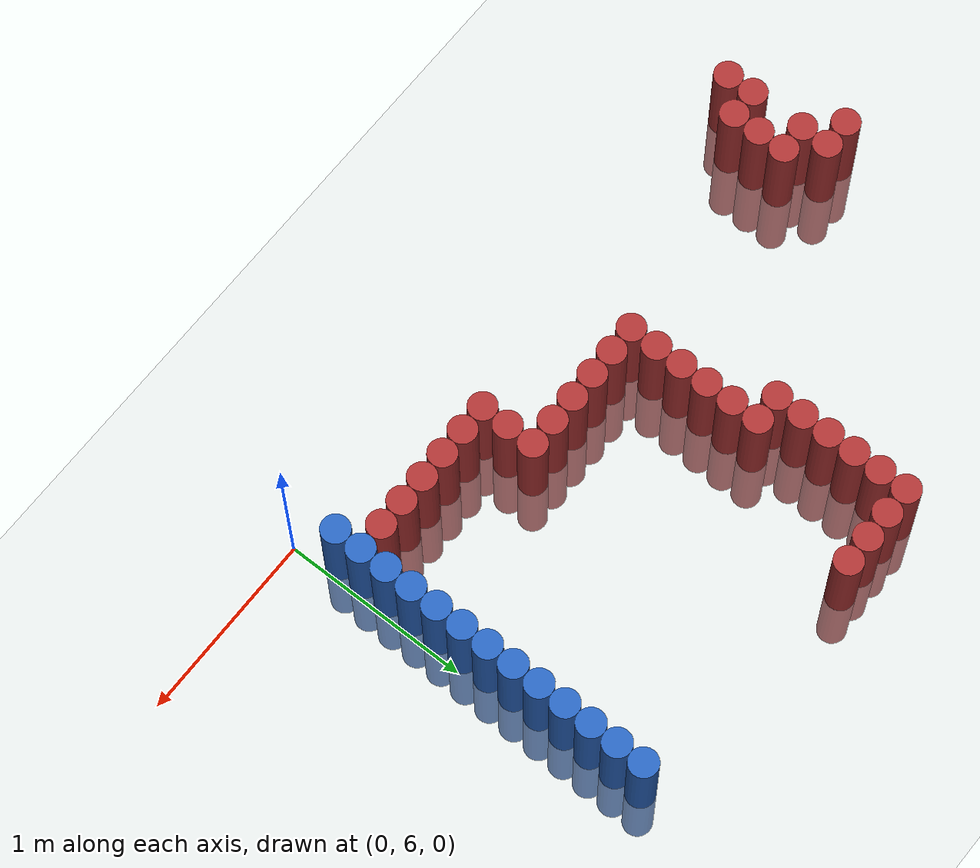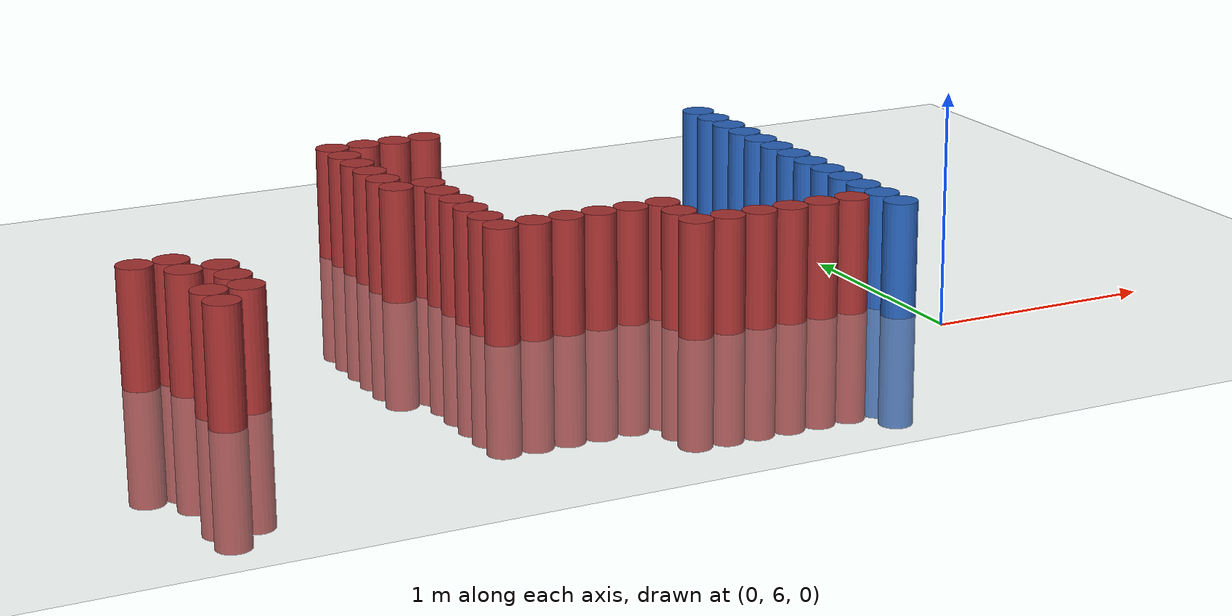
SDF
<sdf version="1.6">
 <world name="default">
  <model name="ground_plane">
   <static>1</static>
   <link name="link">
    <collision name="collision">
     <geometry><plane><normal>0 0 1</normal><size>100 100</size></plane></geometry>
     <surface><friction><ode><mu>100</mu><mu2>50</mu2></ode></friction></surface>
    </collision>
    <visual name="visual">
     <cast_shadows>0</cast_shadows>
     <geometry><plane><normal>0 0 1</normal><size>100 100</size></plane></geometry>
     <material>
      <script><uri>file://media/materials/scripts/gazebo.material</uri><name>Gazebo/Grey</name></script>
     </material>
    </visual>
   </link>
  </model>
  <model name="unit_cylinder_162">
   <static>1</static>
   <pose>-3.225000 6.825000 0.000000 0.000000 0.000000 0.000000</pose>
   <link name="link">
    <inertial>
     <mass>1</mass>
     <inertia><ixx>0.145833</ixx><ixy>0</ixy><ixz>0</ixz><iyy>0.145833</iyy><iyz>0</iyz><izz>0.125</izz></inertia>
    </inertial>
    <collision name="collision">
     <geometry><cylinder><radius>0.075000</radius><length>1</length></cylinder></geometry>
    </collision>
    <visual name="visual">
     <geometry><cylinder><radius>0.075000</radius><length>1</length></cylinder></geometry>
     <material>
      <ambient>0.648000 0.192000 0.192000 1</ambient>
      <diffuse>0.648000 0.192000 0.192000 1</diffuse>
     </material>
     <material>
      <script><name>Gazebo/Grey</name><uri>file://media/materials/scripts/gazebo.material</uri></script>
     </material>
    </visual>
   </link>
  </model>
  <model name="unit_cylinder_171">
   <static>1</static>
   <pose>-3.075000 6.225000 0.000000 0.000000 0.000000 0.000000</pose>
   <link name="link">
    <inertial>
     <mass>1</mass>
     <inertia><ixx>0.145833</ixx><ixy>0</ixy><ixz>0</ixz><iyy>0.145833</iyy><iyz>0</iyz><izz>0.125</izz></inertia>
    </inertial>
    <collision name="collision">
     <geometry><cylinder><radius>0.075000</radius><length>1</length></cylinder></geometry>
    </collision>
    <visual name="visual">
     <geometry><cylinder><radius>0.075000</radius><length>1</length></cylinder></geometry>
     <material>
      <ambient>0.648000 0.192000 0.192000 1</ambient>
      <diffuse>0.648000 0.192000 0.192000 1</diffuse>
     </material>
     <material>
      <script><name>Gazebo/Grey</name><uri>file://media/materials/scripts/gazebo.material</uri></script>
     </material>
    </visual>
   </link>
  </model>
  <model name="unit_cylinder_172">
   <static>1</static>
   <pose>-3.075000 6.375000 0.000000 0.000000 0.000000 0.000000</pose>
   <link name="link">
    <inertial>
     <mass>1</mass>
     <inertia><ixx>0.145833</ixx><ixy>0</ixy><ixz>0</ixz><iyy>0.145833</iyy><iyz>0</iyz><izz>0.125</izz></inertia>
    </inertial>
    <collision name="collision">
     <geometry><cylinder><radius>0.075000</radius><length>1</length></cylinder></geometry>
    </collision>
    <visual name="visual">
     <geometry><cylinder><radius>0.075000</radius><length>1</length></cylinder></geometry>
     <material>
      <ambient>0.648000 0.192000 0.192000 1</ambient>
      <diffuse>0.648000 0.192000 0.192000 1</diffuse>
     </material>
     <material>
      <script><name>Gazebo/Grey</name><uri>file://media/materials/scripts/gazebo.material</uri></script>
     </material>
    </visual>
   </link>
  </model>
  <model name="unit_cylinder_173">
   <static>1</static>
   <pose>-3.075000 6.675000 0.000000 0.000000 0.000000 0.000000</pose>
   <link name="link">
    <inertial>
     <mass>1</mass>
     <inertia><ixx>0.145833</ixx><ixy>0</ixy><ixz>0</ixz><iyy>0.145833</iyy><iyz>0</iyz><izz>0.125</izz></inertia>
    </inertial>
    <collision name="collision">
     <geometry><cylinder><radius>0.075000</radius><length>1</length></cylinder></geometry>
    </collision>
    <visual name="visual">
     <geometry><cylinder><radius>0.075000</radius><length>1</length></cylinder></geometry>
     <material>
      <ambient>0.648000 0.192000 0.192000 1</ambient>
      <diffuse>0.648000 0.192000 0.192000 1</diffuse>
     </material>
     <material>
      <script><name>Gazebo/Grey</name><uri>file://media/materials/scripts/gazebo.material</uri></script>
     </material>
    </visual>
   </link>
  </model>
  <model name="unit_cylinder_174">
   <static>1</static>
   <pose>-3.075000 6.825000 0.000000 0.000000 0.000000 0.000000</pose>
   <link name="link">
    <inertial>
     <mass>1</mass>
     <inertia><ixx>0.145833</ixx><ixy>0</ixy><ixz>0</ixz><iyy>0.145833</iyy><iyz>0</iyz><izz>0.125</izz></inertia>
    </inertial>
    <collision name="collision">
     <geometry><cylinder><radius>0.075000</radius><length>1</length></cylinder></geometry>
    </collision>
    <visual name="visual">
     <geometry><cylinder><radius>0.075000</radius><length>1</length></cylinder></geometry>
     <material>
      <ambient>0.648000 0.192000 0.192000 1</ambient>
      <diffuse>0.648000 0.192000 0.192000 1</diffuse>
     </material>
     <material>
      <script><name>Gazebo/Grey</name><uri>file://media/materials/scripts/gazebo.material</uri></script>
     </material>
    </visual>
   </link>
  </model>
  <model name="unit_cylinder_177">
   <static>1</static>
   <pose>-2.925000 6.375000 0.000000 0.000000 0.000000 0.000000</pose>
   <link name="link">
    <inertial>
     <mass>1</mass>
     <inertia><ixx>0.145833</ixx><ixy>0</ixy><ixz>0</ixz><iyy>0.145833</iyy><iyz>0</iyz><izz>0.125</izz></inertia>
    </inertial>
    <collision name="collision">
     <geometry><cylinder><radius>0.075000</radius><length>1</length></cylinder></geometry>
    </collision>
    <visual name="visual">
     <geometry><cylinder><radius>0.075000</radius><length>1</length></cylinder></geometry>
     <material>
      <ambient>0.648000 0.192000 0.192000 1</ambient>
      <diffuse>0.648000 0.192000 0.192000 1</diffuse>
     </material>
     <material>
      <script><name>Gazebo/Grey</name><uri>file://media/materials/scripts/gazebo.material</uri></script>
     </material>
    </visual>
   </link>
  </model>
  <model name="unit_cylinder_178">
   <static>1</static>
   <pose>-2.925000 6.525000 0.000000 0.000000 0.000000 0.000000</pose>
   <link name="link">
    <inertial>
     <mass>1</mass>
     <inertia><ixx>0.145833</ixx><ixy>0</ixy><ixz>0</ixz><iyy>0.145833</iyy><iyz>0</iyz><izz>0.125</izz></inertia>
    </inertial>
    <collision name="collision">
     <geometry><cylinder><radius>0.075000</radius><length>1</length></cylinder></geometry>
    </collision>
    <visual name="visual">
     <geometry><cylinder><radius>0.075000</radius><length>1</length></cylinder></geometry>
     <material>
      <ambient>0.648000 0.192000 0.192000 1</ambient>
      <diffuse>0.648000 0.192000 0.192000 1</diffuse>
     </material>
     <material>
      <script><name>Gazebo/Grey</name><uri>file://media/materials/scripts/gazebo.material</uri></script>
     </material>
    </visual>
   </link>
  </model>
  <model name="unit_cylinder_179">
   <static>1</static>
   <pose>-2.925000 6.675000 0.000000 0.000000 0.000000 0.000000</pose>
   <link name="link">
    <inertial>
     <mass>1</mass>
     <inertia><ixx>0.145833</ixx><ixy>0</ixy><ixz>0</ixz><iyy>0.145833</iyy><iyz>0</iyz><izz>0.125</izz></inertia>
    </inertial>
    <collision name="collision">
     <geometry><cylinder><radius>0.075000</radius><length>1</length></cylinder></geometry>
    </collision>
    <visual name="visual">
     <geometry><cylinder><radius>0.075000</radius><length>1</length></cylinder></geometry>
     <material>
      <ambient>0.648000 0.192000 0.192000 1</ambient>
      <diffuse>0.648000 0.192000 0.192000 1</diffuse>
     </material>
     <material>
      <script><name>Gazebo/Grey</name><uri>file://media/materials/scripts/gazebo.material</uri></script>
     </material>
    </visual>
   </link>
  </model>
  <model name="unit_cylinder_184">
   <static>1</static>
   <pose>-1.875000 7.425000 0.000000 0.000000 0.000000 0.000000</pose>
   <link name="link">
    <inertial>
     <mass>1</mass>
     <inertia><ixx>0.145833</ixx><ixy>0</ixy><ixz>0</ixz><iyy>0.145833</iyy><iyz>0</iyz><izz>0.125</izz></inertia>
    </inertial>
    <collision name="collision">
     <geometry><cylinder><radius>0.075000</radius><length>1</length></cylinder></geometry>
    </collision>
    <visual name="visual">
     <geometry><cylinder><radius>0.075000</radius><length>1</length></cylinder></geometry>
     <material>
      <ambient>0.648000 0.192000 0.192000 1</ambient>
      <diffuse>0.648000 0.192000 0.192000 1</diffuse>
     </material>
     <material>
      <script><name>Gazebo/Grey</name><uri>file://media/materials/scripts/gazebo.material</uri></script>
     </material>
    </visual>
   </link>
  </model>
  <model name="unit_cylinder_185">
   <static>1</static>
   <pose>-1.875000 7.575000 0.000000 0.000000 0.000000 0.000000</pose>
   <link name="link">
    <inertial>
     <mass>1</mass>
     <inertia><ixx>0.145833</ixx><ixy>0</ixy><ixz>0</ixz><iyy>0.145833</iyy><iyz>0</iyz><izz>0.125</izz></inertia>
    </inertial>
    <collision name="collision">
     <geometry><cylinder><radius>0.075000</radius><length>1</length></cylinder></geometry>
    </collision>
    <visual name="visual">
     <geometry><cylinder><radius>0.075000</radius><length>1</length></cylinder></geometry>
     <material>
      <ambient>0.648000 0.192000 0.192000 1</ambient>
      <diffuse>0.648000 0.192000 0.192000 1</diffuse>
     </material>
     <material>
      <script><name>Gazebo/Grey</name><uri>file://media/materials/scripts/gazebo.material</uri></script>
     </material>
    </visual>
   </link>
  </model>
  <model name="unit_cylinder_186">
   <static>1</static>
   <pose>-1.875000 7.725000 0.000000 0.000000 0.000000 0.000000</pose>
   <link name="link">
    <inertial>
     <mass>1</mass>
     <inertia><ixx>0.145833</ixx><ixy>0</ixy><ixz>0</ixz><iyy>0.145833</iyy><iyz>0</iyz><izz>0.125</izz></inertia>
    </inertial>
    <collision name="collision">
     <geometry><cylinder><radius>0.075000</radius><length>1</length></cylinder></geometry>
    </collision>
    <visual name="visual">
     <geometry><cylinder><radius>0.075000</radius><length>1</length></cylinder></geometry>
     <material>
      <ambient>0.648000 0.192000 0.192000 1</ambient>
      <diffuse>0.648000 0.192000 0.192000 1</diffuse>
     </material>
     <material>
      <script><name>Gazebo/Grey</name><uri>file://media/materials/scripts/gazebo.material</uri></script>
     </material>
    </visual>
   </link>
  </model>
  <model name="unit_cylinder_187">
   <static>1</static>
   <pose>-1.875000 7.875000 0.000000 0.000000 0.000000 0.000000</pose>
   <link name="link">
    <inertial>
     <mass>1</mass>
     <inertia><ixx>0.145833</ixx><ixy>0</ixy><ixz>0</ixz><iyy>0.145833</iyy><iyz>0</iyz><izz>0.125</izz></inertia>
    </inertial>
    <collision name="collision">
     <geometry><cylinder><radius>0.075000</radius><length>1</length></cylinder></geometry>
    </collision>
    <visual name="visual">
     <geometry><cylinder><radius>0.075000</radius><length>1</length></cylinder></geometry>
     <material>
      <ambient>0.648000 0.192000 0.192000 1</ambient>
      <diffuse>0.648000 0.192000 0.192000 1</diffuse>
     </material>
     <material>
      <script><name>Gazebo/Grey</name><uri>file://media/materials/scripts/gazebo.material</uri></script>
     </material>
    </visual>
   </link>
  </model>
  <model name="unit_cylinder_188">
   <static>1</static>
   <pose>-1.875000 8.025000 0.000000 0.000000 0.000000 0.000000</pose>
   <link name="link">
    <inertial>
     <mass>1</mass>
     <inertia><ixx>0.145833</ixx><ixy>0</ixy><ixz>0</ixz><iyy>0.145833</iyy><iyz>0</iyz><izz>0.125</izz></inertia>
    </inertial>
    <collision name="collision">
     <geometry><cylinder><radius>0.075000</radius><length>1</length></cylinder></geometry>
    </collision>
    <visual name="visual">
     <geometry><cylinder><radius>0.075000</radius><length>1</length></cylinder></geometry>
     <material>
      <ambient>0.648000 0.192000 0.192000 1</ambient>
      <diffuse>0.648000 0.192000 0.192000 1</diffuse>
     </material>
     <material>
      <script><name>Gazebo/Grey</name><uri>file://media/materials/scripts/gazebo.material</uri></script>
     </material>
    </visual>
   </link>
  </model>
  <model name="unit_cylinder_189">
   <static>1</static>
   <pose>-1.875000 8.175000 0.000000 0.000000 0.000000 0.000000</pose>
   <link name="link">
    <inertial>
     <mass>1</mass>
     <inertia><ixx>0.145833</ixx><ixy>0</ixy><ixz>0</ixz><iyy>0.145833</iyy><iyz>0</iyz><izz>0.125</izz></inertia>
    </inertial>
    <collision name="collision">
     <geometry><cylinder><radius>0.075000</radius><length>1</length></cylinder></geometry>
    </collision>
    <visual name="visual">
     <geometry><cylinder><radius>0.075000</radius><length>1</length></cylinder></geometry>
     <material>
      <ambient>0.648000 0.192000 0.192000 1</ambient>
      <diffuse>0.648000 0.192000 0.192000 1</diffuse>
     </material>
     <material>
      <script><name>Gazebo/Grey</name><uri>file://media/materials/scripts/gazebo.material</uri></script>
     </material>
    </visual>
   </link>
  </model>
  <model name="unit_cylinder_190">
   <static>1</static>
   <pose>-1.725000 6.675000 0.000000 0.000000 0.000000 0.000000</pose>
   <link name="link">
    <inertial>
     <mass>1</mass>
     <inertia><ixx>0.145833</ixx><ixy>0</ixy><ixz>0</ixz><iyy>0.145833</iyy><iyz>0</iyz><izz>0.125</izz></inertia>
    </inertial>
    <collision name="collision">
     <geometry><cylinder><radius>0.075000</radius><length>1</length></cylinder></geometry>
    </collision>
    <visual name="visual">
     <geometry><cylinder><radius>0.075000</radius><length>1</length></cylinder></geometry>
     <material>
      <ambient>0.648000 0.192000 0.192000 1</ambient>
      <diffuse>0.648000 0.192000 0.192000 1</diffuse>
     </material>
     <material>
      <script><name>Gazebo/Grey</name><uri>file://media/materials/scripts/gazebo.material</uri></script>
     </material>
    </visual>
   </link>
  </model>
  <model name="unit_cylinder_191">
   <static>1</static>
   <pose>-1.725000 6.825000 0.000000 0.000000 0.000000 0.000000</pose>
   <link name="link">
    <inertial>
     <mass>1</mass>
     <inertia><ixx>0.145833</ixx><ixy>0</ixy><ixz>0</ixz><iyy>0.145833</iyy><iyz>0</iyz><izz>0.125</izz></inertia>
    </inertial>
    <collision name="collision">
     <geometry><cylinder><radius>0.075000</radius><length>1</length></cylinder></geometry>
    </collision>
    <visual name="visual">
     <geometry><cylinder><radius>0.075000</radius><length>1</length></cylinder></geometry>
     <material>
      <ambient>0.648000 0.192000 0.192000 1</ambient>
      <diffuse>0.648000 0.192000 0.192000 1</diffuse>
     </material>
     <material>
      <script><name>Gazebo/Grey</name><uri>file://media/materials/scripts/gazebo.material</uri></script>
     </material>
    </visual>
   </link>
  </model>
  <model name="unit_cylinder_192">
   <static>1</static>
   <pose>-1.725000 6.975000 0.000000 0.000000 0.000000 0.000000</pose>
   <link name="link">
    <inertial>
     <mass>1</mass>
     <inertia><ixx>0.145833</ixx><ixy>0</ixy><ixz>0</ixz><iyy>0.145833</iyy><iyz>0</iyz><izz>0.125</izz></inertia>
    </inertial>
    <collision name="collision">
     <geometry><cylinder><radius>0.075000</radius><length>1</length></cylinder></geometry>
    </collision>
    <visual name="visual">
     <geometry><cylinder><radius>0.075000</radius><length>1</length></cylinder></geometry>
     <material>
      <ambient>0.648000 0.192000 0.192000 1</ambient>
      <diffuse>0.648000 0.192000 0.192000 1</diffuse>
     </material>
     <material>
      <script><name>Gazebo/Grey</name><uri>file://media/materials/scripts/gazebo.material</uri></script>
     </material>
    </visual>
   </link>
  </model>
  <model name="unit_cylinder_193">
   <static>1</static>
   <pose>-1.725000 7.125000 0.000000 0.000000 0.000000 0.000000</pose>
   <link name="link">
    <inertial>
     <mass>1</mass>
     <inertia><ixx>0.145833</ixx><ixy>0</ixy><ixz>0</ixz><iyy>0.145833</iyy><iyz>0</iyz><izz>0.125</izz></inertia>
    </inertial>
    <collision name="collision">
     <geometry><cylinder><radius>0.075000</radius><length>1</length></cylinder></geometry>
    </collision>
    <visual name="visual">
     <geometry><cylinder><radius>0.075000</radius><length>1</length></cylinder></geometry>
     <material>
      <ambient>0.648000 0.192000 0.192000 1</ambient>
      <diffuse>0.648000 0.192000 0.192000 1</diffuse>
     </material>
     <material>
      <script><name>Gazebo/Grey</name><uri>file://media/materials/scripts/gazebo.material</uri></script>
     </material>
    </visual>
   </link>
  </model>
  <model name="unit_cylinder_194">
   <static>1</static>
   <pose>-1.725000 7.275000 0.000000 0.000000 0.000000 0.000000</pose>
   <link name="link">
    <inertial>
     <mass>1</mass>
     <inertia><ixx>0.145833</ixx><ixy>0</ixy><ixz>0</ixz><iyy>0.145833</iyy><iyz>0</iyz><izz>0.125</izz></inertia>
    </inertial>
    <collision name="collision">
     <geometry><cylinder><radius>0.075000</radius><length>1</length></cylinder></geometry>
    </collision>
    <visual name="visual">
     <geometry><cylinder><radius>0.075000</radius><length>1</length></cylinder></geometry>
     <material>
      <ambient>0.648000 0.192000 0.192000 1</ambient>
      <diffuse>0.648000 0.192000 0.192000 1</diffuse>
     </material>
     <material>
      <script><name>Gazebo/Grey</name><uri>file://media/materials/scripts/gazebo.material</uri></script>
     </material>
    </visual>
   </link>
  </model>
  <model name="unit_cylinder_195">
   <static>1</static>
   <pose>-1.725000 7.425000 0.000000 0.000000 0.000000 0.000000</pose>
   <link name="link">
    <inertial>
     <mass>1</mass>
     <inertia><ixx>0.145833</ixx><ixy>0</ixy><ixz>0</ixz><iyy>0.145833</iyy><iyz>0</iyz><izz>0.125</izz></inertia>
    </inertial>
    <collision name="collision">
     <geometry><cylinder><radius>0.075000</radius><length>1</length></cylinder></geometry>
    </collision>
    <visual name="visual">
     <geometry><cylinder><radius>0.075000</radius><length>1</length></cylinder></geometry>
     <material>
      <ambient>0.648000 0.192000 0.192000 1</ambient>
      <diffuse>0.648000 0.192000 0.192000 1</diffuse>
     </material>
     <material>
      <script><name>Gazebo/Grey</name><uri>file://media/materials/scripts/gazebo.material</uri></script>
     </material>
    </visual>
   </link>
  </model>
  <model name="unit_cylinder_196">
   <static>1</static>
   <pose>-1.725000 8.175000 0.000000 0.000000 0.000000 0.000000</pose>
   <link name="link">
    <inertial>
     <mass>1</mass>
     <inertia><ixx>0.145833</ixx><ixy>0</ixy><ixz>0</ixz><iyy>0.145833</iyy><iyz>0</iyz><izz>0.125</izz></inertia>
    </inertial>
    <collision name="collision">
     <geometry><cylinder><radius>0.075000</radius><length>1</length></cylinder></geometry>
    </collision>
    <visual name="visual">
     <geometry><cylinder><radius>0.075000</radius><length>1</length></cylinder></geometry>
     <material>
      <ambient>0.648000 0.192000 0.192000 1</ambient>
      <diffuse>0.648000 0.192000 0.192000 1</diffuse>
     </material>
     <material>
      <script><name>Gazebo/Grey</name><uri>file://media/materials/scripts/gazebo.material</uri></script>
     </material>
    </visual>
   </link>
  </model>
  <model name="unit_cylinder_202">
   <static>1</static>
   <pose>-1.575000 6.675000 0.000000 0.000000 0.000000 0.000000</pose>
   <link name="link">
    <inertial>
     <mass>1</mass>
     <inertia><ixx>0.145833</ixx><ixy>0</ixy><ixz>0</ixz><iyy>0.145833</iyy><iyz>0</iyz><izz>0.125</izz></inertia>
    </inertial>
    <collision name="collision">
     <geometry><cylinder><radius>0.075000</radius><length>1</length></cylinder></geometry>
    </collision>
    <visual name="visual">
     <geometry><cylinder><radius>0.075000</radius><length>1</length></cylinder></geometry>
     <material>
      <ambient>0.648000 0.192000 0.192000 1</ambient>
      <diffuse>0.648000 0.192000 0.192000 1</diffuse>
     </material>
     <material>
      <script><name>Gazebo/Grey</name><uri>file://media/materials/scripts/gazebo.material</uri></script>
     </material>
    </visual>
   </link>
  </model>
  <model name="unit_cylinder_203">
   <static>1</static>
   <pose>-1.575000 8.175000 0.000000 0.000000 0.000000 0.000000</pose>
   <link name="link">
    <inertial>
     <mass>1</mass>
     <inertia><ixx>0.145833</ixx><ixy>0</ixy><ixz>0</ixz><iyy>0.145833</iyy><iyz>0</iyz><izz>0.125</izz></inertia>
    </inertial>
    <collision name="collision">
     <geometry><cylinder><radius>0.075000</radius><length>1</length></cylinder></geometry>
    </collision>
    <visual name="visual">
     <geometry><cylinder><radius>0.075000</radius><length>1</length></cylinder></geometry>
     <material>
      <ambient>0.648000 0.192000 0.192000 1</ambient>
      <diffuse>0.648000 0.192000 0.192000 1</diffuse>
     </material>
     <material>
      <script><name>Gazebo/Grey</name><uri>file://media/materials/scripts/gazebo.material</uri></script>
     </material>
    </visual>
   </link>
  </model>
  <model name="unit_cylinder_206">
   <static>1</static>
   <pose>-1.425000 6.675000 0.000000 0.000000 0.000000 0.000000</pose>
   <link name="link">
    <inertial>
     <mass>1</mass>
     <inertia><ixx>0.145833</ixx><ixy>0</ixy><ixz>0</ixz><iyy>0.145833</iyy><iyz>0</iyz><izz>0.125</izz></inertia>
    </inertial>
    <collision name="collision">
     <geometry><cylinder><radius>0.075000</radius><length>1</length></cylinder></geometry>
    </collision>
    <visual name="visual">
     <geometry><cylinder><radius>0.075000</radius><length>1</length></cylinder></geometry>
     <material>
      <ambient>0.648000 0.192000 0.192000 1</ambient>
      <diffuse>0.648000 0.192000 0.192000 1</diffuse>
     </material>
     <material>
      <script><name>Gazebo/Grey</name><uri>file://media/materials/scripts/gazebo.material</uri></script>
     </material>
    </visual>
   </link>
  </model>
  <model name="unit_cylinder_207">
   <static>1</static>
   <pose>-1.425000 8.175000 0.000000 0.000000 0.000000 0.000000</pose>
   <link name="link">
    <inertial>
     <mass>1</mass>
     <inertia><ixx>0.145833</ixx><ixy>0</ixy><ixz>0</ixz><iyy>0.145833</iyy><iyz>0</iyz><izz>0.125</izz></inertia>
    </inertial>
    <collision name="collision">
     <geometry><cylinder><radius>0.075000</radius><length>1</length></cylinder></geometry>
    </collision>
    <visual name="visual">
     <geometry><cylinder><radius>0.075000</radius><length>1</length></cylinder></geometry>
     <material>
      <ambient>0.648000 0.192000 0.192000 1</ambient>
      <diffuse>0.648000 0.192000 0.192000 1</diffuse>
     </material>
     <material>
      <script><name>Gazebo/Grey</name><uri>file://media/materials/scripts/gazebo.material</uri></script>
     </material>
    </visual>
   </link>
  </model>
  <model name="unit_cylinder_211">
   <static>1</static>
   <pose>-1.275000 6.675000 0.000000 0.000000 0.000000 0.000000</pose>
   <link name="link">
    <inertial>
     <mass>1</mass>
     <inertia><ixx>0.145833</ixx><ixy>0</ixy><ixz>0</ixz><iyy>0.145833</iyy><iyz>0</iyz><izz>0.125</izz></inertia>
    </inertial>
    <collision name="collision">
     <geometry><cylinder><radius>0.075000</radius><length>1</length></cylinder></geometry>
    </collision>
    <visual name="visual">
     <geometry><cylinder><radius>0.075000</radius><length>1</length></cylinder></geometry>
     <material>
      <ambient>0.648000 0.192000 0.192000 1</ambient>
      <diffuse>0.648000 0.192000 0.192000 1</diffuse>
     </material>
     <material>
      <script><name>Gazebo/Grey</name><uri>file://media/materials/scripts/gazebo.material</uri></script>
     </material>
    </visual>
   </link>
  </model>
  <model name="unit_cylinder_215">
   <static>1</static>
   <pose>-1.125000 6.675000 0.000000 0.000000 0.000000 0.000000</pose>
   <link name="link">
    <inertial>
     <mass>1</mass>
     <inertia><ixx>0.145833</ixx><ixy>0</ixy><ixz>0</ixz><iyy>0.145833</iyy><iyz>0</iyz><izz>0.125</izz></inertia>
    </inertial>
    <collision name="collision">
     <geometry><cylinder><radius>0.075000</radius><length>1</length></cylinder></geometry>
    </collision>
    <visual name="visual">
     <geometry><cylinder><radius>0.075000</radius><length>1</length></cylinder></geometry>
     <material>
      <ambient>0.648000 0.192000 0.192000 1</ambient>
      <diffuse>0.648000 0.192000 0.192000 1</diffuse>
     </material>
     <material>
      <script><name>Gazebo/Grey</name><uri>file://media/materials/scripts/gazebo.material</uri></script>
     </material>
    </visual>
   </link>
  </model>
  <model name="unit_cylinder_225">
   <static>1</static>
   <pose>-0.975000 6.375000 0.000000 0.000000 0.000000 0.000000</pose>
   <link name="link">
    <inertial>
     <mass>1</mass>
     <inertia><ixx>0.145833</ixx><ixy>0</ixy><ixz>0</ixz><iyy>0.145833</iyy><iyz>0</iyz><izz>0.125</izz></inertia>
    </inertial>
    <collision name="collision">
     <geometry><cylinder><radius>0.075000</radius><length>1</length></cylinder></geometry>
    </collision>
    <visual name="visual">
     <geometry><cylinder><radius>0.075000</radius><length>1</length></cylinder></geometry>
     <material>
      <ambient>0.648000 0.192000 0.192000 1</ambient>
      <diffuse>0.648000 0.192000 0.192000 1</diffuse>
     </material>
     <material>
      <script><name>Gazebo/Grey</name><uri>file://media/materials/scripts/gazebo.material</uri></script>
     </material>
    </visual>
   </link>
  </model>
  <model name="unit_cylinder_226">
   <static>1</static>
   <pose>-0.975000 6.525000 0.000000 0.000000 0.000000 0.000000</pose>
   <link name="link">
    <inertial>
     <mass>1</mass>
     <inertia><ixx>0.145833</ixx><ixy>0</ixy><ixz>0</ixz><iyy>0.145833</iyy><iyz>0</iyz><izz>0.125</izz></inertia>
    </inertial>
    <collision name="collision">
     <geometry><cylinder><radius>0.075000</radius><length>1</length></cylinder></geometry>
    </collision>
    <visual name="visual">
     <geometry><cylinder><radius>0.075000</radius><length>1</length></cylinder></geometry>
     <material>
      <ambient>0.648000 0.192000 0.192000 1</ambient>
      <diffuse>0.648000 0.192000 0.192000 1</diffuse>
     </material>
     <material>
      <script><name>Gazebo/Grey</name><uri>file://media/materials/scripts/gazebo.material</uri></script>
     </material>
    </visual>
   </link>
  </model>
  <model name="unit_cylinder_227">
   <static>1</static>
   <pose>-0.975000 6.675000 0.000000 0.000000 0.000000 0.000000</pose>
   <link name="link">
    <inertial>
     <mass>1</mass>
     <inertia><ixx>0.145833</ixx><ixy>0</ixy><ixz>0</ixz><iyy>0.145833</iyy><iyz>0</iyz><izz>0.125</izz></inertia>
    </inertial>
    <collision name="collision">
     <geometry><cylinder><radius>0.075000</radius><length>1</length></cylinder></geometry>
    </collision>
    <visual name="visual">
     <geometry><cylinder><radius>0.075000</radius><length>1</length></cylinder></geometry>
     <material>
      <ambient>0.648000 0.192000 0.192000 1</ambient>
      <diffuse>0.648000 0.192000 0.192000 1</diffuse>
     </material>
     <material>
      <script><name>Gazebo/Grey</name><uri>file://media/materials/scripts/gazebo.material</uri></script>
     </material>
    </visual>
   </link>
  </model>
  <model name="unit_cylinder_234">
   <static>1</static>
   <pose>-0.825000 6.375000 0.000000 0.000000 0.000000 0.000000</pose>
   <link name="link">
    <inertial>
     <mass>1</mass>
     <inertia><ixx>0.145833</ixx><ixy>0</ixy><ixz>0</ixz><iyy>0.145833</iyy><iyz>0</iyz><izz>0.125</izz></inertia>
    </inertial>
    <collision name="collision">
     <geometry><cylinder><radius>0.075000</radius><length>1</length></cylinder></geometry>
    </collision>
    <visual name="visual">
     <geometry><cylinder><radius>0.075000</radius><length>1</length></cylinder></geometry>
     <material>
      <ambient>0.648000 0.192000 0.192000 1</ambient>
      <diffuse>0.648000 0.192000 0.192000 1</diffuse>
     </material>
     <material>
      <script><name>Gazebo/Grey</name><uri>file://media/materials/scripts/gazebo.material</uri></script>
     </material>
    </visual>
   </link>
  </model>
  <model name="unit_cylinder_241">
   <static>1</static>
   <pose>-0.675000 6.375000 0.000000 0.000000 0.000000 0.000000</pose>
   <link name="link">
    <inertial>
     <mass>1</mass>
     <inertia><ixx>0.145833</ixx><ixy>0</ixy><ixz>0</ixz><iyy>0.145833</iyy><iyz>0</iyz><izz>0.125</izz></inertia>
    </inertial>
    <collision name="collision">
     <geometry><cylinder><radius>0.075000</radius><length>1</length></cylinder></geometry>
    </collision>
    <visual name="visual">
     <geometry><cylinder><radius>0.075000</radius><length>1</length></cylinder></geometry>
     <material>
      <ambient>0.648000 0.192000 0.192000 1</ambient>
      <diffuse>0.648000 0.192000 0.192000 1</diffuse>
     </material>
     <material>
      <script><name>Gazebo/Grey</name><uri>file://media/materials/scripts/gazebo.material</uri></script>
     </material>
    </visual>
   </link>
  </model>
  <model name="unit_cylinder_248">
   <static>1</static>
   <pose>-0.525000 6.375000 0.000000 0.000000 0.000000 0.000000</pose>
   <link name="link">
    <inertial>
     <mass>1</mass>
     <inertia><ixx>0.145833</ixx><ixy>0</ixy><ixz>0</ixz><iyy>0.145833</iyy><iyz>0</iyz><izz>0.125</izz></inertia>
    </inertial>
    <collision name="collision">
     <geometry><cylinder><radius>0.075000</radius><length>1</length></cylinder></geometry>
    </collision>
    <visual name="visual">
     <geometry><cylinder><radius>0.075000</radius><length>1</length></cylinder></geometry>
     <material>
      <ambient>0.648000 0.192000 0.192000 1</ambient>
      <diffuse>0.648000 0.192000 0.192000 1</diffuse>
     </material>
     <material>
      <script><name>Gazebo/Grey</name><uri>file://media/materials/scripts/gazebo.material</uri></script>
     </material>
    </visual>
   </link>
  </model>
  <model name="unit_cylinder_256">
   <static>1</static>
   <pose>-0.375000 6.375000 0.000000 0.000000 0.000000 0.000000</pose>
   <link name="link">
    <inertial>
     <mass>1</mass>
     <inertia><ixx>0.145833</ixx><ixy>0</ixy><ixz>0</ixz><iyy>0.145833</iyy><iyz>0</iyz><izz>0.125</izz></inertia>
    </inertial>
    <collision name="collision">
     <geometry><cylinder><radius>0.075000</radius><length>1</length></cylinder></geometry>
    </collision>
    <visual name="visual">
     <geometry><cylinder><radius>0.075000</radius><length>1</length></cylinder></geometry>
     <material>
      <ambient>0.648000 0.192000 0.192000 1</ambient>
      <diffuse>0.648000 0.192000 0.192000 1</diffuse>
     </material>
     <material>
      <script><name>Gazebo/Grey</name><uri>file://media/materials/scripts/gazebo.material</uri></script>
     </material>
    </visual>
   </link>
  </model>
  <model name="unit_cylinder_260">
   <static>1</static>
   <pose>-0.225000 6.375000 0.000000 0.000000 0.000000 0.000000</pose>
   <link name="link">
    <inertial>
     <mass>1</mass>
     <inertia><ixx>0.145833</ixx><ixy>0</ixy><ixz>0</ixz><iyy>0.145833</iyy><iyz>0</iyz><izz>0.125</izz></inertia>
    </inertial>
    <collision name="collision">
     <geometry><cylinder><radius>0.075000</radius><length>1</length></cylinder></geometry>
    </collision>
    <visual name="visual">
     <geometry><cylinder><radius>0.075000</radius><length>1</length></cylinder></geometry>
     <material>
      <ambient>0.648000 0.192000 0.192000 1</ambient>
      <diffuse>0.648000 0.192000 0.192000 1</diffuse>
     </material>
     <material>
      <script><name>Gazebo/Grey</name><uri>file://media/materials/scripts/gazebo.material</uri></script>
     </material>
    </visual>
   </link>
  </model>
  <model name="unit_cylinder_269">
   <static>1</static>
   <pose>-0.075000 6.225000 0.000000 0.000000 0.000000 0.000000</pose>
   <link name="link">
    <inertial>
     <mass>1</mass>
     <inertia><ixx>0.145833</ixx><ixy>0</ixy><ixz>0</ixz><iyy>0.145833</iyy><iyz>0</iyz><izz>0.125</izz></inertia>
    </inertial>
    <collision name="collision">
     <geometry><cylinder><radius>0.075000</radius><length>1</length></cylinder></geometry>
    </collision>
    <visual name="visual">
     <geometry><cylinder><radius>0.075000</radius><length>1</length></cylinder></geometry>
     <material>
      <ambient>0.152000 0.379000 0.720000 1</ambient>
      <diffuse>0.152000 0.379000 0.720000 1</diffuse>
     </material>
     <material>
      <script><name>Gazebo/Grey</name><uri>file://media/materials/scripts/gazebo.material</uri></script>
     </material>
    </visual>
   </link>
  </model>
  <model name="unit_cylinder_270">
   <static>1</static>
   <pose>-0.075000 6.375000 0.000000 0.000000 0.000000 0.000000</pose>
   <link name="link">
    <inertial>
     <mass>1</mass>
     <inertia><ixx>0.145833</ixx><ixy>0</ixy><ixz>0</ixz><iyy>0.145833</iyy><iyz>0</iyz><izz>0.125</izz></inertia>
    </inertial>
    <collision name="collision">
     <geometry><cylinder><radius>0.075000</radius><length>1</length></cylinder></geometry>
    </collision>
    <visual name="visual">
     <geometry><cylinder><radius>0.075000</radius><length>1</length></cylinder></geometry>
     <material>
      <ambient>0.152000 0.379000 0.720000 1</ambient>
      <diffuse>0.152000 0.379000 0.720000 1</diffuse>
     </material>
     <material>
      <script><name>Gazebo/Grey</name><uri>file://media/materials/scripts/gazebo.material</uri></script>
     </material>
    </visual>
   </link>
  </model>
  <model name="unit_cylinder_271">
   <static>1</static>
   <pose>-0.075000 6.525000 0.000000 0.000000 0.000000 0.000000</pose>
   <link name="link">
    <inertial>
     <mass>1</mass>
     <inertia><ixx>0.145833</ixx><ixy>0</ixy><ixz>0</ixz><iyy>0.145833</iyy><iyz>0</iyz><izz>0.125</izz></inertia>
    </inertial>
    <collision name="collision">
     <geometry><cylinder><radius>0.075000</radius><length>1</length></cylinder></geometry>
    </collision>
    <visual name="visual">
     <geometry><cylinder><radius>0.075000</radius><length>1</length></cylinder></geometry>
     <material>
      <ambient>0.152000 0.379000 0.720000 1</ambient>
      <diffuse>0.152000 0.379000 0.720000 1</diffuse>
     </material>
     <material>
      <script><name>Gazebo/Grey</name><uri>file://media/materials/scripts/gazebo.material</uri></script>
     </material>
    </visual>
   </link>
  </model>
  <model name="unit_cylinder_272">
   <static>1</static>
   <pose>-0.075000 6.675000 0.000000 0.000000 0.000000 0.000000</pose>
   <link name="link">
    <inertial>
     <mass>1</mass>
     <inertia><ixx>0.145833</ixx><ixy>0</ixy><ixz>0</ixz><iyy>0.145833</iyy><iyz>0</iyz><izz>0.125</izz></inertia>
    </inertial>
    <collision name="collision">
     <geometry><cylinder><radius>0.075000</radius><length>1</length></cylinder></geometry>
    </collision>
    <visual name="visual">
     <geometry><cylinder><radius>0.075000</radius><length>1</length></cylinder></geometry>
     <material>
      <ambient>0.152000 0.379000 0.720000 1</ambient>
      <diffuse>0.152000 0.379000 0.720000 1</diffuse>
     </material>
     <material>
      <script><name>Gazebo/Grey</name><uri>file://media/materials/scripts/gazebo.material</uri></script>
     </material>
    </visual>
   </link>
  </model>
  <model name="unit_cylinder_273">
   <static>1</static>
   <pose>-0.075000 6.825000 0.000000 0.000000 0.000000 0.000000</pose>
   <link name="link">
    <inertial>
     <mass>1</mass>
     <inertia><ixx>0.145833</ixx><ixy>0</ixy><ixz>0</ixz><iyy>0.145833</iyy><iyz>0</iyz><izz>0.125</izz></inertia>
    </inertial>
    <collision name="collision">
     <geometry><cylinder><radius>0.075000</radius><length>1</length></cylinder></geometry>
    </collision>
    <visual name="visual">
     <geometry><cylinder><radius>0.075000</radius><length>1</length></cylinder></geometry>
     <material>
      <ambient>0.152000 0.379000 0.720000 1</ambient>
      <diffuse>0.152000 0.379000 0.720000 1</diffuse>
     </material>
     <material>
      <script><name>Gazebo/Grey</name><uri>file://media/materials/scripts/gazebo.material</uri></script>
     </material>
    </visual>
   </link>
  </model>
  <model name="unit_cylinder_274">
   <static>1</static>
   <pose>-0.075000 6.975000 0.000000 0.000000 0.000000 0.000000</pose>
   <link name="link">
    <inertial>
     <mass>1</mass>
     <inertia><ixx>0.145833</ixx><ixy>0</ixy><ixz>0</ixz><iyy>0.145833</iyy><iyz>0</iyz><izz>0.125</izz></inertia>
    </inertial>
    <collision name="collision">
     <geometry><cylinder><radius>0.075000</radius><length>1</length></cylinder></geometry>
    </collision>
    <visual name="visual">
     <geometry><cylinder><radius>0.075000</radius><length>1</length></cylinder></geometry>
     <material>
      <ambient>0.152000 0.379000 0.720000 1</ambient>
      <diffuse>0.152000 0.379000 0.720000 1</diffuse>
     </material>
     <material>
      <script><name>Gazebo/Grey</name><uri>file://media/materials/scripts/gazebo.material</uri></script>
     </material>
    </visual>
   </link>
  </model>
  <model name="unit_cylinder_275">
   <static>1</static>
   <pose>-0.075000 7.125000 0.000000 0.000000 0.000000 0.000000</pose>
   <link name="link">
    <inertial>
     <mass>1</mass>
     <inertia><ixx>0.145833</ixx><ixy>0</ixy><ixz>0</ixz><iyy>0.145833</iyy><iyz>0</iyz><izz>0.125</izz></inertia>
    </inertial>
    <collision name="collision">
     <geometry><cylinder><radius>0.075000</radius><length>1</length></cylinder></geometry>
    </collision>
    <visual name="visual">
     <geometry><cylinder><radius>0.075000</radius><length>1</length></cylinder></geometry>
     <material>
      <ambient>0.152000 0.379000 0.720000 1</ambient>
      <diffuse>0.152000 0.379000 0.720000 1</diffuse>
     </material>
     <material>
      <script><name>Gazebo/Grey</name><uri>file://media/materials/scripts/gazebo.material</uri></script>
     </material>
    </visual>
   </link>
  </model>
  <model name="unit_cylinder_276">
   <static>1</static>
   <pose>-0.075000 7.275000 0.000000 0.000000 0.000000 0.000000</pose>
   <link name="link">
    <inertial>
     <mass>1</mass>
     <inertia><ixx>0.145833</ixx><ixy>0</ixy><ixz>0</ixz><iyy>0.145833</iyy><iyz>0</iyz><izz>0.125</izz></inertia>
    </inertial>
    <collision name="collision">
     <geometry><cylinder><radius>0.075000</radius><length>1</length></cylinder></geometry>
    </collision>
    <visual name="visual">
     <geometry><cylinder><radius>0.075000</radius><length>1</length></cylinder></geometry>
     <material>
      <ambient>0.152000 0.379000 0.720000 1</ambient>
      <diffuse>0.152000 0.379000 0.720000 1</diffuse>
     </material>
     <material>
      <script><name>Gazebo/Grey</name><uri>file://media/materials/scripts/gazebo.material</uri></script>
     </material>
    </visual>
   </link>
  </model>
  <model name="unit_cylinder_277">
   <static>1</static>
   <pose>-0.075000 7.425000 0.000000 0.000000 0.000000 0.000000</pose>
   <link name="link">
    <inertial>
     <mass>1</mass>
     <inertia><ixx>0.145833</ixx><ixy>0</ixy><ixz>0</ixz><iyy>0.145833</iyy><iyz>0</iyz><izz>0.125</izz></inertia>
    </inertial>
    <collision name="collision">
     <geometry><cylinder><radius>0.075000</radius><length>1</length></cylinder></geometry>
    </collision>
    <visual name="visual">
     <geometry><cylinder><radius>0.075000</radius><length>1</length></cylinder></geometry>
     <material>
      <ambient>0.152000 0.379000 0.720000 1</ambient>
      <diffuse>0.152000 0.379000 0.720000 1</diffuse>
     </material>
     <material>
      <script><name>Gazebo/Grey</name><uri>file://media/materials/scripts/gazebo.material</uri></script>
     </material>
    </visual>
   </link>
  </model>
  <model name="unit_cylinder_278">
   <static>1</static>
   <pose>-0.075000 7.575000 0.000000 0.000000 0.000000 0.000000</pose>
   <link name="link">
    <inertial>
     <mass>1</mass>
     <inertia><ixx>0.145833</ixx><ixy>0</ixy><ixz>0</ixz><iyy>0.145833</iyy><iyz>0</iyz><izz>0.125</izz></inertia>
    </inertial>
    <collision name="collision">
     <geometry><cylinder><radius>0.075000</radius><length>1</length></cylinder></geometry>
    </collision>
    <visual name="visual">
     <geometry><cylinder><radius>0.075000</radius><length>1</length></cylinder></geometry>
     <material>
      <ambient>0.152000 0.379000 0.720000 1</ambient>
      <diffuse>0.152000 0.379000 0.720000 1</diffuse>
     </material>
     <material>
      <script><name>Gazebo/Grey</name><uri>file://media/materials/scripts/gazebo.material</uri></script>
     </material>
    </visual>
   </link>
  </model>
  <model name="unit_cylinder_279">
   <static>1</static>
   <pose>-0.075000 7.725000 0.000000 0.000000 0.000000 0.000000</pose>
   <link name="link">
    <inertial>
     <mass>1</mass>
     <inertia><ixx>0.145833</ixx><ixy>0</ixy><ixz>0</ixz><iyy>0.145833</iyy><iyz>0</iyz><izz>0.125</izz></inertia>
    </inertial>
    <collision name="collision">
     <geometry><cylinder><radius>0.075000</radius><length>1</length></cylinder></geometry>
    </collision>
    <visual name="visual">
     <geometry><cylinder><radius>0.075000</radius><length>1</length></cylinder></geometry>
     <material>
      <ambient>0.152000 0.379000 0.720000 1</ambient>
      <diffuse>0.152000 0.379000 0.720000 1</diffuse>
     </material>
     <material>
      <script><name>Gazebo/Grey</name><uri>file://media/materials/scripts/gazebo.material</uri></script>
     </material>
    </visual>
   </link>
  </model>
  <model name="unit_cylinder_280">
   <static>1</static>
   <pose>-0.075000 7.875000 0.000000 0.000000 0.000000 0.000000</pose>
   <link name="link">
    <inertial>
     <mass>1</mass>
     <inertia><ixx>0.145833</ixx><ixy>0</ixy><ixz>0</ixz><iyy>0.145833</iyy><iyz>0</iyz><izz>0.125</izz></inertia>
    </inertial>
    <collision name="collision">
     <geometry><cylinder><radius>0.075000</radius><length>1</length></cylinder></geometry>
    </collision>
    <visual name="visual">
     <geometry><cylinder><radius>0.075000</radius><length>1</length></cylinder></geometry>
     <material>
      <ambient>0.152000 0.379000 0.720000 1</ambient>
      <diffuse>0.152000 0.379000 0.720000 1</diffuse>
     </material>
     <material>
      <script><name>Gazebo/Grey</name><uri>file://media/materials/scripts/gazebo.material</uri></script>
     </material>
    </visual>
   </link>
  </model>
  <model name="unit_cylinder_281">
   <static>1</static>
   <pose>-0.075000 8.025000 0.000000 0.000000 0.000000 0.000000</pose>
   <link name="link">
    <inertial>
     <mass>1</mass>
     <inertia><ixx>0.145833</ixx><ixy>0</ixy><ixz>0</ixz><iyy>0.145833</iyy><iyz>0</iyz><izz>0.125</izz></inertia>
    </inertial>
    <collision name="collision">
     <geometry><cylinder><radius>0.075000</radius><length>1</length></cylinder></geometry>
    </collision>
    <visual name="visual">
     <geometry><cylinder><radius>0.075000</radius><length>1</length></cylinder></geometry>
     <material>
      <ambient>0.152000 0.379000 0.720000 1</ambient>
      <diffuse>0.152000 0.379000 0.720000 1</diffuse>
     </material>
     <material>
      <script><name>Gazebo/Grey</name><uri>file://media/materials/scripts/gazebo.material</uri></script>
     </material>
    </visual>
   </link>
  </model>
 </world>
</sdf>
